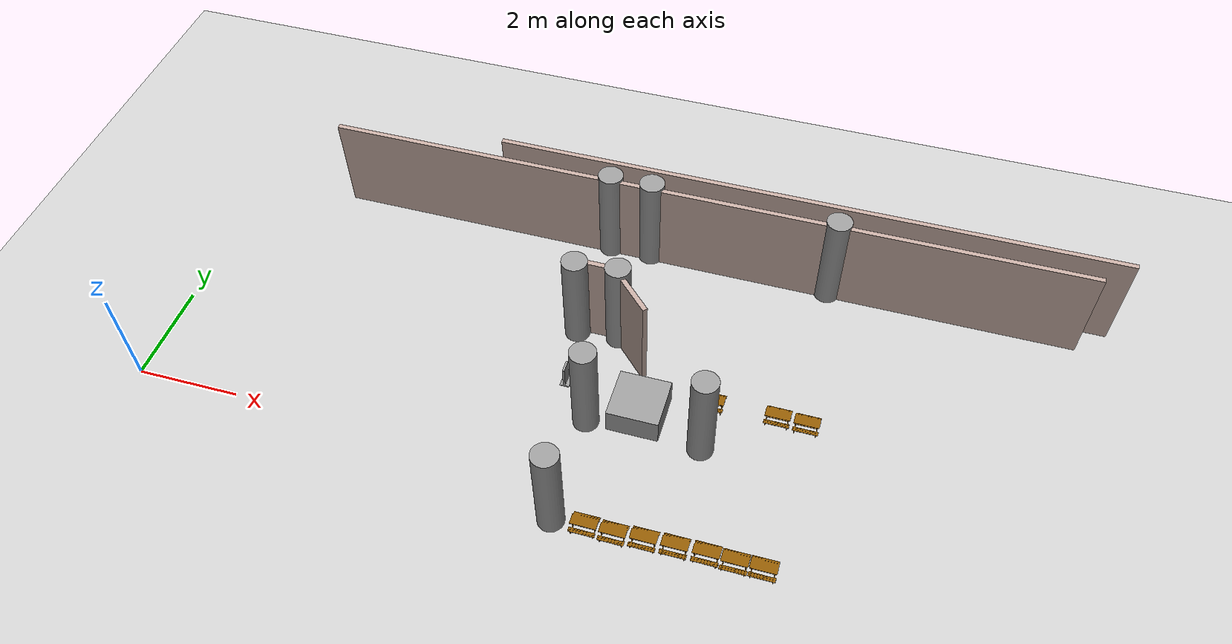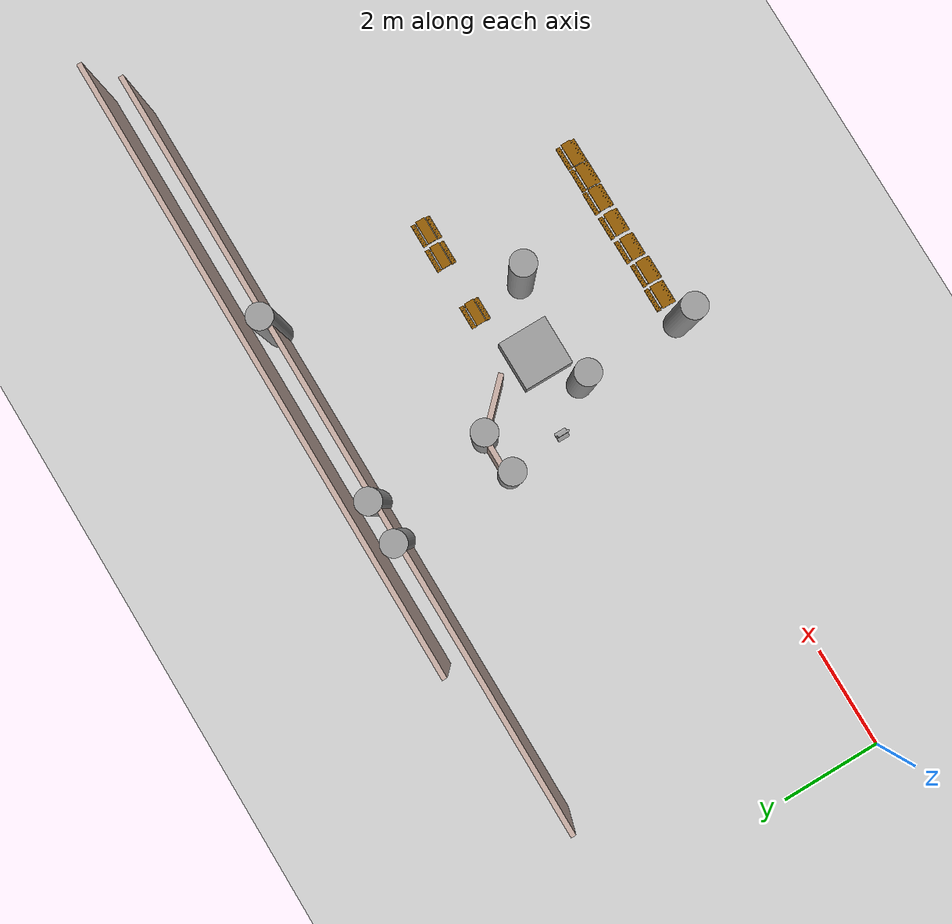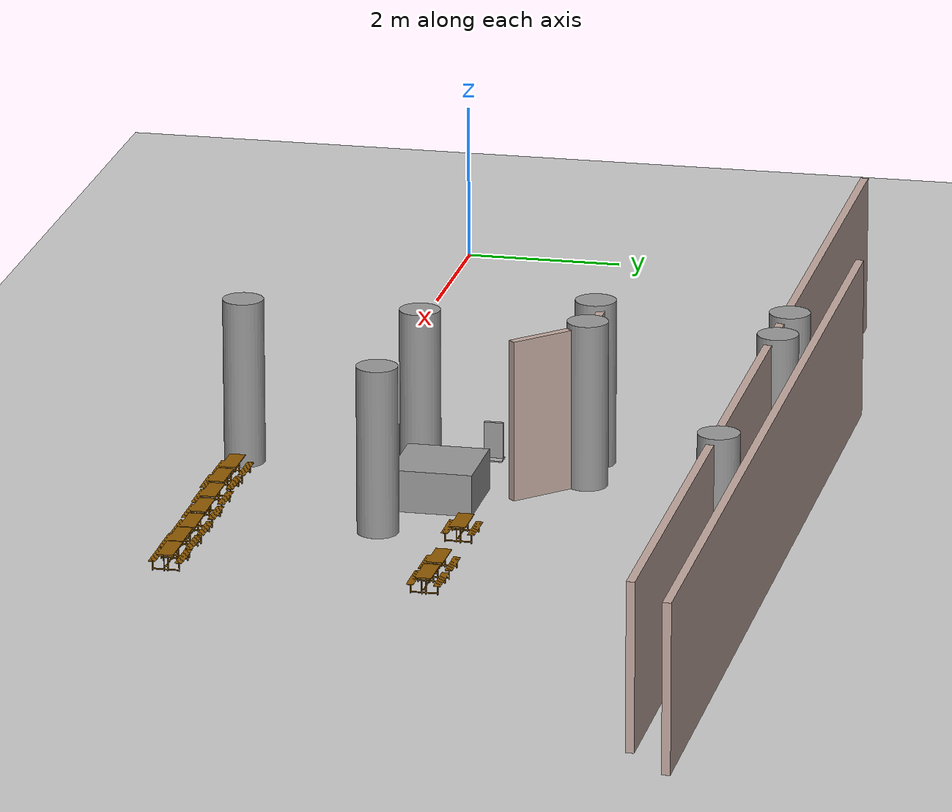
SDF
<sdf version="1.6">
 <world name="default">
  <model name="ground_plane">
   <static>1</static>
   <link name="link">
    <collision name="collision">
     <geometry><plane><normal>0 0 1</normal><size>100 100</size></plane></geometry>
     <surface>
      <contact><collide_bitmask>65535</collide_bitmask></contact>
      <friction><ode><mu>100</mu><mu2>50</mu2></ode></friction>
     </surface>
    </collision>
    <visual name="visual">
     <cast_shadows>0</cast_shadows>
     <geometry><plane><normal>0 0 1</normal><size>100 100</size></plane></geometry>
     <material>
      <script><uri>file://media/materials/scripts/gazebo.material</uri><name>Gazebo/Grey</name></script>
     </material>
    </visual>
   </link>
  </model>
  <model name="gedung_p">
   <pose>2.96636 -2.09069 0 0 -0 0</pose>
   <link name="Wall_145">
    <collision name="Wall_145_Collision">
     <geometry><box><size>15.25 0.1 2</size></box></geometry>
     <pose>0 0 1 0 -0 0</pose>
    </collision>
    <visual name="Wall_145_Visual">
     <pose>0 0 1 0 -0 0</pose>
     <geometry><box><size>15.25 0.1 2</size></box></geometry>
     <material>
      <script><uri>file://media/materials/scripts/gazebo.material</uri><name>Gazebo/Grey</name></script>
      <ambient>0.760784 0.662745 0.627451 1</ambient>
     </material>
     <meta><layer>0</layer></meta>
    </visual>
    <pose>6.63149 7.64081 0 0 -0 0</pose>
   </link>
   <link name="Wall_150">
    <collision name="Wall_150_Collision">
     <geometry><box><size>0.95 0.1 2</size></box></geometry>
     <pose>0 0 1 0 -0 0</pose>
    </collision>
    <visual name="Wall_150_Visual">
     <pose>0 0 1 0 -0 0</pose>
     <geometry><box><size>0.95 0.1 2</size></box></geometry>
     <material>
      <script><uri>file://media/materials/scripts/gazebo.material</uri><name>Gazebo/Grey</name></script>
      <ambient>0.760784 0.662745 0.627451 1</ambient>
     </material>
     <meta><layer>0</layer></meta>
    </visual>
    <pose>5.12349 5.44881 0 0 -0 0</pose>
   </link>
   <link name="Wall_151">
    <collision name="Wall_151_Collision">
     <geometry><box><size>1.2 0.1 2</size></box></geometry>
     <pose>0 0 1 0 -0 0</pose>
    </collision>
    <visual name="Wall_151_Visual">
     <pose>0 0 1 0 -0 0</pose>
     <geometry><box><size>1.2 0.1 2</size></box></geometry>
     <material>
      <script><uri>file://media/materials/scripts/gazebo.material</uri><name>Gazebo/Grey</name></script>
      <ambient>0.760784 0.662745 0.627451 1</ambient>
     </material>
     <meta><layer>0</layer></meta>
    </visual>
    <pose>5.93749 5.0598 0 0 -0 -0.785398</pose>
   </link>
   <link name="Wall_157">
    <collision name="Wall_157_Collision">
     <geometry><box><size>12.45 0.1 2</size></box></geometry>
     <pose>0 0 1 0 -0 0</pose>
    </collision>
    <visual name="Wall_157_Visual">
     <pose>0 0 1 0 -0 0</pose>
     <geometry><box><size>12.45 0.1 2</size></box></geometry>
     <material>
      <script><uri>file://media/materials/scripts/gazebo.material</uri><name>Gazebo/Grey</name></script>
      <ambient>0.760784 0.662745 0.627451 1</ambient>
     </material>
     <meta><layer>0</layer></meta>
    </visual>
    <pose>8.60349 8.1548 0 0 -0 0</pose>
   </link>
   <link name="Wall_252">
    <collision name="Wall_252_Collision">
     <geometry><box><size>0.305199 0.2 2</size></box></geometry>
     <pose>0 0 1 0 -0 0</pose>
    </collision>
    <visual name="Wall_252_Visual">
     <pose>0 0 1 0 -0 0</pose>
     <geometry><box><size>0.305199 0.2 2</size></box></geometry>
     <material>
      <script><uri>file://media/materials/scripts/gazebo.material</uri><name>Gazebo/Grey</name></script>
      <ambient>0.760784 0.662745 0.627451 1</ambient>
     </material>
     <meta><layer>0</layer></meta>
    </visual>
    <pose>5.58982 1.13562 0 0 -0 0</pose>
   </link>
   <link name="Wall_254">
    <collision name="Wall_254_Collision">
     <geometry><box><size>0.324693 0.2 2</size></box></geometry>
     <pose>0 0 1 0 -0 0</pose>
    </collision>
    <visual name="Wall_254_Visual">
     <pose>0 0 1 0 -0 0</pose>
     <geometry><box><size>0.324693 0.2 2</size></box></geometry>
     <material>
      <script><uri>file://media/materials/scripts/gazebo.material</uri><name>Gazebo/Grey</name></script>
      <ambient>0.760784 0.662745 0.627451 1</ambient>
     </material>
     <meta><layer>0</layer></meta>
    </visual>
    <pose>5.58982 3.28741 0 0 -0 0</pose>
   </link>
   <link name="Wall_256">
    <collision name="Wall_256_Collision">
     <geometry><box><size>0.343771 0.2 2</size></box></geometry>
     <pose>0 0 1 0 -0 0</pose>
    </collision>
    <visual name="Wall_256_Visual">
     <pose>0 0 1 0 -0 0</pose>
     <geometry><box><size>0.343771 0.2 2</size></box></geometry>
     <material>
      <script><uri>file://media/materials/scripts/gazebo.material</uri><name>Gazebo/Grey</name></script>
      <ambient>0.760784 0.662745 0.627451 1</ambient>
     </material>
     <meta><layer>0</layer></meta>
    </visual>
    <pose>7.7703 3.28263 0 0 -0 0.066568</pose>
   </link>
   <static>1</static>
  </model>
  <model name="tiang_besar_37">
   <link name="link_0">
    <inertial>
     <mass>1</mass>
     <inertia>
      <ixx>0.166667</ixx>
      <ixy>0</ixy>
      <ixz>0</ixz>
      <iyy>0.166667</iyy>
      <iyz>0</iyz>
      <izz>0.166667</izz>
     </inertia>
    </inertial>
    <pose>0.080543 -0.031124 0 0 -0 0</pose>
    <visual name="visual">
     <geometry>
      <mesh><uri>/home/thardi/Gazebo Objek/cylinder sedang.dae</uri><scale>1 1 1.15</scale></mesh>
     </geometry>
     <material>
      <lighting>1</lighting>
      <script><uri>file://media/materials/scripts/gazebo.material</uri><name>Gazebo/Grey</name></script>
      <shader type="vertex"><normal_map>__default__</normal_map></shader>
      <ambient>0.3 0.3 0.3 1</ambient>
      <diffuse>0.7 0.7 0.7 1</diffuse>
      <specular>0.01 0.01 0.01 1</specular>
      <emissive>0 0 0 1</emissive>
     </material>
    </visual>
    <collision name="collision">
     <geometry>
      <mesh><uri>/home/thardi/Gazebo Objek/cylinder sedang.dae</uri><scale>1 1 1.15</scale></mesh>
     </geometry>
     <surface>
      <friction>
       <ode><mu>1.15</mu><mu2>1</mu2><fdir1>0 0 0</fdir1><slip1>0</slip1><slip2>0</slip2></ode>
       <torsional>
        <coefficient>1</coefficient>
        <patch_radius>0</patch_radius>
        <surface_radius>0</surface_radius>
        <use_patch_radius>1</use_patch_radius>
        <ode><slip>0</slip></ode>
       </torsional>
      </friction>
      <bounce><restitution_coefficient>0</restitution_coefficient><threshold>1e+06</threshold></bounce>
      <contact>
       <collide_without_contact>0</collide_without_contact>
       <collide_without_contact_bitmask>1</collide_without_contact_bitmask>
       <collide_bitmask>1</collide_bitmask>
       <ode>
        <soft_cfm>0</soft_cfm>
        <soft_erp>0.2</soft_erp>
        <kp>1e+13</kp>
        <kd>1</kd>
        <max_vel>0.01</max_vel>
        <min_depth>0</min_depth>
       </ode>
       <bullet>
        <split_impulse>1</split_impulse>
        <split_impulse_penetration_threshold>-0.01</split_impulse_penetration_threshold>
        <soft_cfm>0</soft_cfm>
        <soft_erp>0.2</soft_erp>
        <kp>1e+13</kp>
        <kd>1</kd>
       </bullet>
      </contact>
     </surface>
    </collision>
   </link>
   <static>1</static>
   <pose>7.69154 3.28477 0 0 -0 0</pose>
  </model>
  <model name="tiang_besar_38">
   <link name="link_0">
    <inertial>
     <mass>1</mass>
     <inertia>
      <ixx>0.166667</ixx>
      <ixy>0</ixy>
      <ixz>0</ixz>
      <iyy>0.166667</iyy>
      <iyz>0</iyz>
      <izz>0.166667</izz>
     </inertia>
    </inertial>
    <pose>0.080543 -0.031124 0 0 -0 0</pose>
    <visual name="visual">
     <geometry>
      <mesh><uri>/home/thardi/Gazebo Objek/cylinder sedang.dae</uri><scale>1 1 1.15</scale></mesh>
     </geometry>
     <material>
      <lighting>1</lighting>
      <script><uri>file://media/materials/scripts/gazebo.material</uri><name>Gazebo/Grey</name></script>
      <shader type="vertex"><normal_map>__default__</normal_map></shader>
      <ambient>0.3 0.3 0.3 1</ambient>
      <diffuse>0.7 0.7 0.7 1</diffuse>
      <specular>0.01 0.01 0.01 1</specular>
      <emissive>0 0 0 1</emissive>
     </material>
    </visual>
    <collision name="collision">
     <geometry>
      <mesh><uri>/home/thardi/Gazebo Objek/cylinder sedang.dae</uri><scale>1 1 1.15</scale></mesh>
     </geometry>
     <surface>
      <friction>
       <ode><mu>1.15</mu><mu2>1</mu2><fdir1>0 0 0</fdir1><slip1>0</slip1><slip2>0</slip2></ode>
       <torsional>
        <coefficient>1</coefficient>
        <patch_radius>0</patch_radius>
        <surface_radius>0</surface_radius>
        <use_patch_radius>1</use_patch_radius>
        <ode><slip>0</slip></ode>
       </torsional>
      </friction>
      <bounce><restitution_coefficient>0</restitution_coefficient><threshold>1e+06</threshold></bounce>
      <contact>
       <collide_without_contact>0</collide_without_contact>
       <collide_without_contact_bitmask>1</collide_without_contact_bitmask>
       <collide_bitmask>1</collide_bitmask>
       <ode>
        <soft_cfm>0</soft_cfm>
        <soft_erp>0.2</soft_erp>
        <kp>1e+13</kp>
        <kd>1</kd>
        <max_vel>0.01</max_vel>
        <min_depth>0</min_depth>
       </ode>
       <bullet>
        <split_impulse>1</split_impulse>
        <split_impulse_penetration_threshold>-0.01</split_impulse_penetration_threshold>
        <soft_cfm>0</soft_cfm>
        <soft_erp>0.2</soft_erp>
        <kp>1e+13</kp>
        <kd>1</kd>
       </bullet>
      </contact>
     </surface>
    </collision>
   </link>
   <static>1</static>
   <pose>8.51353 3.3526 0 0 -0 0</pose>
  </model>
  <model name="tiang_besar_44">
   <link name="link_0">
    <inertial>
     <mass>1</mass>
     <inertia>
      <ixx>0.166667</ixx>
      <ixy>0</ixy>
      <ixz>0</ixz>
      <iyy>0.166667</iyy>
      <iyz>0</iyz>
      <izz>0.166667</izz>
     </inertia>
    </inertial>
    <pose>0.080543 -0.031124 0 0 -0 0</pose>
    <visual name="visual">
     <geometry>
      <mesh><uri>/home/thardi/Gazebo Objek/cylinder sedang.dae</uri><scale>1 1 1.15</scale></mesh>
     </geometry>
     <material>
      <lighting>1</lighting>
      <script><uri>file://media/materials/scripts/gazebo.material</uri><name>Gazebo/Grey</name></script>
      <shader type="vertex"><normal_map>__default__</normal_map></shader>
      <ambient>0.3 0.3 0.3 1</ambient>
      <diffuse>0.7 0.7 0.7 1</diffuse>
      <specular>0.01 0.01 0.01 1</specular>
      <emissive>0 0 0 1</emissive>
     </material>
    </visual>
    <collision name="collision">
     <geometry>
      <mesh><uri>/home/thardi/Gazebo Objek/cylinder sedang.dae</uri><scale>1 1 1.15</scale></mesh>
     </geometry>
     <surface>
      <friction>
       <ode><mu>1.15</mu><mu2>1</mu2><fdir1>0 0 0</fdir1><slip1>0</slip1><slip2>0</slip2></ode>
       <torsional>
        <coefficient>1</coefficient>
        <patch_radius>0</patch_radius>
        <surface_radius>0</surface_radius>
        <use_patch_radius>1</use_patch_radius>
        <ode><slip>0</slip></ode>
       </torsional>
      </friction>
      <bounce><restitution_coefficient>0</restitution_coefficient><threshold>1e+06</threshold></bounce>
      <contact>
       <collide_without_contact>0</collide_without_contact>
       <collide_without_contact_bitmask>1</collide_without_contact_bitmask>
       <collide_bitmask>1</collide_bitmask>
       <ode>
        <soft_cfm>0</soft_cfm>
        <soft_erp>0.2</soft_erp>
        <kp>1e+13</kp>
        <kd>1</kd>
        <max_vel>0.01</max_vel>
        <min_depth>0</min_depth>
       </ode>
       <bullet>
        <split_impulse>1</split_impulse>
        <split_impulse_penetration_threshold>-0.01</split_impulse_penetration_threshold>
        <soft_cfm>0</soft_cfm>
        <soft_erp>0.2</soft_erp>
        <kp>1e+13</kp>
        <kd>1</kd>
       </bullet>
      </contact>
     </surface>
    </collision>
   </link>
   <static>1</static>
   <pose>8.5241 -0.881705 0 0 -0 0</pose>
  </model>
  <model name="tiang_besar_58">
   <link name="link_0">
    <inertial>
     <mass>1</mass>
     <inertia>
      <ixx>0.166667</ixx>
      <ixy>0</ixy>
      <ixz>0</ixz>
      <iyy>0.166667</iyy>
      <iyz>0</iyz>
      <izz>0.166667</izz>
     </inertia>
    </inertial>
    <pose>0.080543 -0.031124 0 0 -0 0</pose>
    <visual name="visual">
     <geometry>
      <mesh><uri>/home/thardi/Gazebo Objek/cylinder sedang.dae</uri><scale>1 1 1.15</scale></mesh>
     </geometry>
     <material>
      <lighting>1</lighting>
      <script><uri>file://media/materials/scripts/gazebo.material</uri><name>Gazebo/Grey</name></script>
      <shader type="vertex"><normal_map>__default__</normal_map></shader>
      <ambient>0.3 0.3 0.3 1</ambient>
      <diffuse>0.7 0.7 0.7 1</diffuse>
      <specular>0.01 0.01 0.01 1</specular>
      <emissive>0 0 0 1</emissive>
     </material>
    </visual>
    <collision name="collision">
     <geometry>
      <mesh><uri>/home/thardi/Gazebo Objek/cylinder sedang.dae</uri><scale>1 1 1.15</scale></mesh>
     </geometry>
     <surface>
      <friction>
       <ode><mu>1.15</mu><mu2>1</mu2><fdir1>0 0 0</fdir1><slip1>0</slip1><slip2>0</slip2></ode>
       <torsional>
        <coefficient>1</coefficient>
        <patch_radius>0</patch_radius>
        <surface_radius>0</surface_radius>
        <use_patch_radius>1</use_patch_radius>
        <ode><slip>0</slip></ode>
       </torsional>
      </friction>
      <bounce><restitution_coefficient>0</restitution_coefficient><threshold>1e+06</threshold></bounce>
      <contact>
       <collide_without_contact>0</collide_without_contact>
       <collide_without_contact_bitmask>1</collide_without_contact_bitmask>
       <collide_bitmask>1</collide_bitmask>
       <ode>
        <soft_cfm>0</soft_cfm>
        <soft_erp>0.2</soft_erp>
        <kp>1e+13</kp>
        <kd>1</kd>
        <max_vel>0.01</max_vel>
        <min_depth>0</min_depth>
       </ode>
       <bullet>
        <split_impulse>1</split_impulse>
        <split_impulse_penetration_threshold>-0.01</split_impulse_penetration_threshold>
        <soft_cfm>0</soft_cfm>
        <soft_erp>0.2</soft_erp>
        <kp>1e+13</kp>
        <kd>1</kd>
       </bullet>
      </contact>
     </surface>
    </collision>
   </link>
   <static>1</static>
   <pose>8.48435 1.29135 0 0 -0 0</pose>
  </model>
  <model name="tiang_besar_59">
   <link name="link_0">
    <inertial>
     <mass>1</mass>
     <inertia>
      <ixx>0.166667</ixx>
      <ixy>0</ixy>
      <ixz>0</ixz>
      <iyy>0.166667</iyy>
      <iyz>0</iyz>
      <izz>0.166667</izz>
     </inertia>
    </inertial>
    <pose>0.080543 -0.031124 0 0 -0 0</pose>
    <visual name="visual">
     <geometry>
      <mesh><uri>/home/thardi/Gazebo Objek/cylinder sedang.dae</uri><scale>1 1 1.15</scale></mesh>
     </geometry>
     <material>
      <lighting>1</lighting>
      <script><uri>file://media/materials/scripts/gazebo.material</uri><name>Gazebo/Grey</name></script>
      <shader type="vertex"><normal_map>__default__</normal_map></shader>
      <ambient>0.3 0.3 0.3 1</ambient>
      <diffuse>0.7 0.7 0.7 1</diffuse>
      <specular>0.01 0.01 0.01 1</specular>
      <emissive>0 0 0 1</emissive>
     </material>
    </visual>
    <collision name="collision">
     <geometry>
      <mesh><uri>/home/thardi/Gazebo Objek/cylinder sedang.dae</uri><scale>1 1 1.15</scale></mesh>
     </geometry>
     <surface>
      <friction>
       <ode><mu>1.15</mu><mu2>1</mu2><fdir1>0 0 0</fdir1><slip1>0</slip1><slip2>0</slip2></ode>
       <torsional>
        <coefficient>1</coefficient>
        <patch_radius>0</patch_radius>
        <surface_radius>0</surface_radius>
        <use_patch_radius>1</use_patch_radius>
        <ode><slip>0</slip></ode>
       </torsional>
      </friction>
      <bounce><restitution_coefficient>0</restitution_coefficient><threshold>1e+06</threshold></bounce>
      <contact>
       <collide_without_contact>0</collide_without_contact>
       <collide_without_contact_bitmask>1</collide_without_contact_bitmask>
       <collide_bitmask>1</collide_bitmask>
       <ode>
        <soft_cfm>0</soft_cfm>
        <soft_erp>0.2</soft_erp>
        <kp>1e+13</kp>
        <kd>1</kd>
        <max_vel>0.01</max_vel>
        <min_depth>0</min_depth>
       </ode>
       <bullet>
        <split_impulse>1</split_impulse>
        <split_impulse_penetration_threshold>-0.01</split_impulse_penetration_threshold>
        <soft_cfm>0</soft_cfm>
        <soft_erp>0.2</soft_erp>
        <kp>1e+13</kp>
        <kd>1</kd>
       </bullet>
      </contact>
     </surface>
    </collision>
   </link>
   <static>1</static>
   <pose>10.6787 1.26678 0 0 -0 0</pose>
  </model>
  <model name="tiang_besar_68">
   <link name="link_0">
    <inertial>
     <mass>1</mass>
     <inertia>
      <ixx>0.166667</ixx>
      <ixy>0</ixy>
      <ixz>0</ixz>
      <iyy>0.166667</iyy>
      <iyz>0</iyz>
      <izz>0.166667</izz>
     </inertia>
    </inertial>
    <pose>0.080543 -0.031124 0 0 -0 0</pose>
    <visual name="visual">
     <geometry>
      <mesh><uri>/home/thardi/Gazebo Objek/cylinder sedang.dae</uri><scale>1 1 1.15</scale></mesh>
     </geometry>
     <material>
      <lighting>1</lighting>
      <script><uri>file://media/materials/scripts/gazebo.material</uri><name>Gazebo/Grey</name></script>
      <shader type="vertex"><normal_map>__default__</normal_map></shader>
      <ambient>0.3 0.3 0.3 1</ambient>
      <diffuse>0.7 0.7 0.7 1</diffuse>
      <specular>0.01 0.01 0.01 1</specular>
      <emissive>0 0 0 1</emissive>
     </material>
    </visual>
    <collision name="collision">
     <geometry>
      <mesh><uri>/home/thardi/Gazebo Objek/cylinder sedang.dae</uri><scale>1 1 1.15</scale></mesh>
     </geometry>
     <surface>
      <friction>
       <ode><mu>1.15</mu><mu2>1</mu2><fdir1>0 0 0</fdir1><slip1>0</slip1><slip2>0</slip2></ode>
       <torsional>
        <coefficient>1</coefficient>
        <patch_radius>0</patch_radius>
        <surface_radius>0</surface_radius>
        <use_patch_radius>1</use_patch_radius>
        <ode><slip>0</slip></ode>
       </torsional>
      </friction>
      <bounce><restitution_coefficient>0</restitution_coefficient><threshold>1e+06</threshold></bounce>
      <contact>
       <collide_without_contact>0</collide_without_contact>
       <collide_without_contact_bitmask>1</collide_without_contact_bitmask>
       <collide_bitmask>1</collide_bitmask>
       <ode>
        <soft_cfm>0</soft_cfm>
        <soft_erp>0.2</soft_erp>
        <kp>1e+13</kp>
        <kd>1</kd>
        <max_vel>0.01</max_vel>
        <min_depth>0</min_depth>
       </ode>
       <bullet>
        <split_impulse>1</split_impulse>
        <split_impulse_penetration_threshold>-0.01</split_impulse_penetration_threshold>
        <soft_cfm>0</soft_cfm>
        <soft_erp>0.2</soft_erp>
        <kp>1e+13</kp>
        <kd>1</kd>
       </bullet>
      </contact>
     </surface>
    </collision>
   </link>
   <static>1</static>
   <pose>7.68722 5.65576 0 0 -0 0</pose>
  </model>
  <model name="tiang_besar_69">
   <link name="link_0">
    <inertial>
     <mass>1</mass>
     <inertia>
      <ixx>0.166667</ixx>
      <ixy>0</ixy>
      <ixz>0</ixz>
      <iyy>0.166667</iyy>
      <iyz>0</iyz>
      <izz>0.166667</izz>
     </inertia>
    </inertial>
    <pose>0.080543 -0.031124 0 0 -0 0</pose>
    <visual name="visual">
     <geometry>
      <mesh><uri>/home/thardi/Gazebo Objek/cylinder sedang.dae</uri><scale>1 1 1.15</scale></mesh>
     </geometry>
     <material>
      <lighting>1</lighting>
      <script><uri>file://media/materials/scripts/gazebo.material</uri><name>Gazebo/Grey</name></script>
      <shader type="vertex"><normal_map>__default__</normal_map></shader>
      <ambient>0.3 0.3 0.3 1</ambient>
      <diffuse>0.7 0.7 0.7 1</diffuse>
      <specular>0.01 0.01 0.01 1</specular>
      <emissive>0 0 0 1</emissive>
     </material>
    </visual>
    <collision name="collision">
     <geometry>
      <mesh><uri>/home/thardi/Gazebo Objek/cylinder sedang.dae</uri><scale>1 1 1.15</scale></mesh>
     </geometry>
     <surface>
      <friction>
       <ode><mu>1.15</mu><mu2>1</mu2><fdir1>0 0 0</fdir1><slip1>0</slip1><slip2>0</slip2></ode>
       <torsional>
        <coefficient>1</coefficient>
        <patch_radius>0</patch_radius>
        <surface_radius>0</surface_radius>
        <use_patch_radius>1</use_patch_radius>
        <ode><slip>0</slip></ode>
       </torsional>
      </friction>
      <bounce><restitution_coefficient>0</restitution_coefficient><threshold>1e+06</threshold></bounce>
      <contact>
       <collide_without_contact>0</collide_without_contact>
       <collide_without_contact_bitmask>1</collide_without_contact_bitmask>
       <collide_bitmask>1</collide_bitmask>
       <ode>
        <soft_cfm>0</soft_cfm>
        <soft_erp>0.2</soft_erp>
        <kp>1e+13</kp>
        <kd>1</kd>
        <max_vel>0.01</max_vel>
        <min_depth>0</min_depth>
       </ode>
       <bullet>
        <split_impulse>1</split_impulse>
        <split_impulse_penetration_threshold>-0.01</split_impulse_penetration_threshold>
        <soft_cfm>0</soft_cfm>
        <soft_erp>0.2</soft_erp>
        <kp>1e+13</kp>
        <kd>1</kd>
       </bullet>
      </contact>
     </surface>
    </collision>
   </link>
   <static>1</static>
   <pose>8.52922 5.66176 0 0 -0 0</pose>
  </model>
  <model name="tiang_besar_70">
   <link name="link_0">
    <inertial>
     <mass>1</mass>
     <inertia>
      <ixx>0.166667</ixx>
      <ixy>0</ixy>
      <ixz>0</ixz>
      <iyy>0.166667</iyy>
      <iyz>0</iyz>
      <izz>0.166667</izz>
     </inertia>
    </inertial>
    <pose>0.080543 -0.031124 0 0 -0 0</pose>
    <visual name="visual">
     <geometry>
      <mesh><uri>/home/thardi/Gazebo Objek/cylinder sedang.dae</uri><scale>1 1 1.15</scale></mesh>
     </geometry>
     <material>
      <lighting>1</lighting>
      <script><uri>file://media/materials/scripts/gazebo.material</uri><name>Gazebo/Grey</name></script>
      <shader type="vertex"><normal_map>__default__</normal_map></shader>
      <ambient>0.3 0.3 0.3 1</ambient>
      <diffuse>0.7 0.7 0.7 1</diffuse>
      <specular>0.01 0.01 0.01 1</specular>
      <emissive>0 0 0 1</emissive>
     </material>
    </visual>
    <collision name="collision">
     <geometry>
      <mesh><uri>/home/thardi/Gazebo Objek/cylinder sedang.dae</uri><scale>1 1 1.15</scale></mesh>
     </geometry>
     <surface>
      <friction>
       <ode><mu>1.15</mu><mu2>1</mu2><fdir1>0 0 0</fdir1><slip1>0</slip1><slip2>0</slip2></ode>
       <torsional>
        <coefficient>1</coefficient>
        <patch_radius>0</patch_radius>
        <surface_radius>0</surface_radius>
        <use_patch_radius>1</use_patch_radius>
        <ode><slip>0</slip></ode>
       </torsional>
      </friction>
      <bounce><restitution_coefficient>0</restitution_coefficient><threshold>1e+06</threshold></bounce>
      <contact>
       <collide_without_contact>0</collide_without_contact>
       <collide_without_contact_bitmask>1</collide_without_contact_bitmask>
       <collide_bitmask>1</collide_bitmask>
       <ode>
        <soft_cfm>0</soft_cfm>
        <soft_erp>0.2</soft_erp>
        <kp>1e+13</kp>
        <kd>1</kd>
        <max_vel>0.01</max_vel>
        <min_depth>0</min_depth>
       </ode>
       <bullet>
        <split_impulse>1</split_impulse>
        <split_impulse_penetration_threshold>-0.01</split_impulse_penetration_threshold>
        <soft_cfm>0</soft_cfm>
        <soft_erp>0.2</soft_erp>
        <kp>1e+13</kp>
        <kd>1</kd>
       </bullet>
      </contact>
     </surface>
    </collision>
   </link>
   <static>1</static>
   <pose>12.2287 5.63932 0 0 -0 0</pose>
  </model>
  <model name="kursi_piknik_10">
   <link name="link_2">
    <inertial>
     <mass>1</mass>
     <inertia>
      <ixx>0.166667</ixx>
      <ixy>0</ixy>
      <ixz>0</ixz>
      <iyy>0.166667</iyy>
      <iyz>0</iyz>
      <izz>0.166667</izz>
     </inertia>
    </inertial>
    <visual name="visual">
     <geometry>
      <mesh><uri>/home/thardi/Gazebo Objek/kursi piknik.dae</uri><scale>0.2 0.2 0.2</scale></mesh>
     </geometry>
     <material>
      <lighting>1</lighting>
      <script><uri>file://media/materials/scripts/gazebo.material</uri><name>Gazebo/Grey</name></script>
      <shader type="vertex"><normal_map>__default__</normal_map></shader>
      <ambient>0.561 0.349 0.008 1</ambient>
      <diffuse>0.561 0.349 0.008 1</diffuse>
      <specular>0.561 0.349 0.008 1</specular>
      <emissive>0.561 0.349 0.008 1</emissive>
     </material>
    </visual>
    <collision name="collision">
     <geometry>
      <mesh><uri>/home/thardi/Gazebo Objek/kursi piknik.dae</uri><scale>0.2 0.2 0.2</scale></mesh>
     </geometry>
     <surface>
      <friction>
       <ode><mu>1</mu><mu2>1</mu2><fdir1>0 0 0</fdir1><slip1>0</slip1><slip2>0</slip2></ode>
       <torsional>
        <coefficient>1</coefficient>
        <patch_radius>0</patch_radius>
        <surface_radius>0</surface_radius>
        <use_patch_radius>1</use_patch_radius>
        <ode><slip>0</slip></ode>
       </torsional>
      </friction>
      <bounce><restitution_coefficient>0</restitution_coefficient><threshold>1e+06</threshold></bounce>
      <contact>
       <collide_without_contact>0</collide_without_contact>
       <collide_without_contact_bitmask>1</collide_without_contact_bitmask>
       <collide_bitmask>1</collide_bitmask>
       <ode>
        <soft_cfm>0</soft_cfm>
        <soft_erp>0.2</soft_erp>
        <kp>1e+13</kp>
        <kd>1</kd>
        <max_vel>0.01</max_vel>
        <min_depth>0</min_depth>
       </ode>
       <bullet>
        <split_impulse>1</split_impulse>
        <split_impulse_penetration_threshold>-0.01</split_impulse_penetration_threshold>
        <soft_cfm>0</soft_cfm>
        <soft_erp>0.2</soft_erp>
        <kp>1e+13</kp>
        <kd>1</kd>
       </bullet>
      </contact>
     </surface>
    </collision>
   </link>
   <static>1</static>
   <pose>9.21536 -0.908258 0 0 -0 0</pose>
  </model>
  <model name="kursi_piknik_11">
   <link name="link_2">
    <inertial>
     <mass>1</mass>
     <inertia>
      <ixx>0.166667</ixx>
      <ixy>0</ixy>
      <ixz>0</ixz>
      <iyy>0.166667</iyy>
      <iyz>0</iyz>
      <izz>0.166667</izz>
     </inertia>
    </inertial>
    <visual name="visual">
     <geometry>
      <mesh><uri>/home/thardi/Gazebo Objek/kursi piknik.dae</uri><scale>0.2 0.2 0.2</scale></mesh>
     </geometry>
     <material>
      <lighting>1</lighting>
      <script><uri>file://media/materials/scripts/gazebo.material</uri><name>Gazebo/Grey</name></script>
      <shader type="vertex"><normal_map>__default__</normal_map></shader>
      <ambient>0.561 0.349 0.008 1</ambient>
      <diffuse>0.561 0.349 0.008 1</diffuse>
      <specular>0.561 0.349 0.008 1</specular>
      <emissive>0.561 0.349 0.008 1</emissive>
     </material>
    </visual>
    <collision name="collision">
     <geometry>
      <mesh><uri>/home/thardi/Gazebo Objek/kursi piknik.dae</uri><scale>0.2 0.2 0.2</scale></mesh>
     </geometry>
     <surface>
      <friction>
       <ode><mu>1</mu><mu2>1</mu2><fdir1>0 0 0</fdir1><slip1>0</slip1><slip2>0</slip2></ode>
       <torsional>
        <coefficient>1</coefficient>
        <patch_radius>0</patch_radius>
        <surface_radius>0</surface_radius>
        <use_patch_radius>1</use_patch_radius>
        <ode><slip>0</slip></ode>
       </torsional>
      </friction>
      <bounce><restitution_coefficient>0</restitution_coefficient><threshold>1e+06</threshold></bounce>
      <contact>
       <collide_without_contact>0</collide_without_contact>
       <collide_without_contact_bitmask>1</collide_without_contact_bitmask>
       <collide_bitmask>1</collide_bitmask>
       <ode>
        <soft_cfm>0</soft_cfm>
        <soft_erp>0.2</soft_erp>
        <kp>1e+13</kp>
        <kd>1</kd>
        <max_vel>0.01</max_vel>
        <min_depth>0</min_depth>
       </ode>
       <bullet>
        <split_impulse>1</split_impulse>
        <split_impulse_penetration_threshold>-0.01</split_impulse_penetration_threshold>
        <soft_cfm>0</soft_cfm>
        <soft_erp>0.2</soft_erp>
        <kp>1e+13</kp>
        <kd>1</kd>
       </bullet>
      </contact>
     </surface>
    </collision>
   </link>
   <static>1</static>
   <pose>9.7468 -0.925362 0 0 -0 0</pose>
  </model>
  <model name="kursi_piknik_12">
   <link name="link_2">
    <inertial>
     <mass>1</mass>
     <inertia>
      <ixx>0.166667</ixx>
      <ixy>0</ixy>
      <ixz>0</ixz>
      <iyy>0.166667</iyy>
      <iyz>0</iyz>
      <izz>0.166667</izz>
     </inertia>
    </inertial>
    <visual name="visual">
     <geometry>
      <mesh><uri>/home/thardi/Gazebo Objek/kursi piknik.dae</uri><scale>0.2 0.2 0.2</scale></mesh>
     </geometry>
     <material>
      <lighting>1</lighting>
      <script><uri>file://media/materials/scripts/gazebo.material</uri><name>Gazebo/Grey</name></script>
      <shader type="vertex"><normal_map>__default__</normal_map></shader>
      <ambient>0.561 0.349 0.008 1</ambient>
      <diffuse>0.561 0.349 0.008 1</diffuse>
      <specular>0.561 0.349 0.008 1</specular>
      <emissive>0.561 0.349 0.008 1</emissive>
     </material>
    </visual>
    <collision name="collision">
     <geometry>
      <mesh><uri>/home/thardi/Gazebo Objek/kursi piknik.dae</uri><scale>0.2 0.2 0.2</scale></mesh>
     </geometry>
     <surface>
      <friction>
       <ode><mu>1</mu><mu2>1</mu2><fdir1>0 0 0</fdir1><slip1>0</slip1><slip2>0</slip2></ode>
       <torsional>
        <coefficient>1</coefficient>
        <patch_radius>0</patch_radius>
        <surface_radius>0</surface_radius>
        <use_patch_radius>1</use_patch_radius>
        <ode><slip>0</slip></ode>
       </torsional>
      </friction>
      <bounce><restitution_coefficient>0</restitution_coefficient><threshold>1e+06</threshold></bounce>
      <contact>
       <collide_without_contact>0</collide_without_contact>
       <collide_without_contact_bitmask>1</collide_without_contact_bitmask>
       <collide_bitmask>1</collide_bitmask>
       <ode>
        <soft_cfm>0</soft_cfm>
        <soft_erp>0.2</soft_erp>
        <kp>1e+13</kp>
        <kd>1</kd>
        <max_vel>0.01</max_vel>
        <min_depth>0</min_depth>
       </ode>
       <bullet>
        <split_impulse>1</split_impulse>
        <split_impulse_penetration_threshold>-0.01</split_impulse_penetration_threshold>
        <soft_cfm>0</soft_cfm>
        <soft_erp>0.2</soft_erp>
        <kp>1e+13</kp>
        <kd>1</kd>
       </bullet>
      </contact>
     </surface>
    </collision>
   </link>
   <static>1</static>
   <pose>10.2882 -0.89489 0 0 -0 0</pose>
  </model>
  <model name="kursi_piknik_13">
   <link name="link_2">
    <inertial>
     <mass>1</mass>
     <inertia>
      <ixx>0.166667</ixx>
      <ixy>0</ixy>
      <ixz>0</ixz>
      <iyy>0.166667</iyy>
      <iyz>0</iyz>
      <izz>0.166667</izz>
     </inertia>
    </inertial>
    <visual name="visual">
     <geometry>
      <mesh><uri>/home/thardi/Gazebo Objek/kursi piknik.dae</uri><scale>0.2 0.2 0.2</scale></mesh>
     </geometry>
     <material>
      <lighting>1</lighting>
      <script><uri>file://media/materials/scripts/gazebo.material</uri><name>Gazebo/Grey</name></script>
      <shader type="vertex"><normal_map>__default__</normal_map></shader>
      <ambient>0.561 0.349 0.008 1</ambient>
      <diffuse>0.561 0.349 0.008 1</diffuse>
      <specular>0.561 0.349 0.008 1</specular>
      <emissive>0.561 0.349 0.008 1</emissive>
     </material>
    </visual>
    <collision name="collision">
     <geometry>
      <mesh><uri>/home/thardi/Gazebo Objek/kursi piknik.dae</uri><scale>0.2 0.2 0.2</scale></mesh>
     </geometry>
     <surface>
      <friction>
       <ode><mu>1</mu><mu2>1</mu2><fdir1>0 0 0</fdir1><slip1>0</slip1><slip2>0</slip2></ode>
       <torsional>
        <coefficient>1</coefficient>
        <patch_radius>0</patch_radius>
        <surface_radius>0</surface_radius>
        <use_patch_radius>1</use_patch_radius>
        <ode><slip>0</slip></ode>
       </torsional>
      </friction>
      <bounce><restitution_coefficient>0</restitution_coefficient><threshold>1e+06</threshold></bounce>
      <contact>
       <collide_without_contact>0</collide_without_contact>
       <collide_without_contact_bitmask>1</collide_without_contact_bitmask>
       <collide_bitmask>1</collide_bitmask>
       <ode>
        <soft_cfm>0</soft_cfm>
        <soft_erp>0.2</soft_erp>
        <kp>1e+13</kp>
        <kd>1</kd>
        <max_vel>0.01</max_vel>
        <min_depth>0</min_depth>
       </ode>
       <bullet>
        <split_impulse>1</split_impulse>
        <split_impulse_penetration_threshold>-0.01</split_impulse_penetration_threshold>
        <soft_cfm>0</soft_cfm>
        <soft_erp>0.2</soft_erp>
        <kp>1e+13</kp>
        <kd>1</kd>
       </bullet>
      </contact>
     </surface>
    </collision>
   </link>
   <static>1</static>
   <pose>10.8367 -0.878332 0 0 -0 0</pose>
  </model>
  <model name="kursi_piknik_14">
   <link name="link_2">
    <inertial>
     <mass>1</mass>
     <inertia>
      <ixx>0.166667</ixx>
      <ixy>0</ixy>
      <ixz>0</ixz>
      <iyy>0.166667</iyy>
      <iyz>0</iyz>
      <izz>0.166667</izz>
     </inertia>
    </inertial>
    <visual name="visual">
     <geometry>
      <mesh><uri>/home/thardi/Gazebo Objek/kursi piknik.dae</uri><scale>0.2 0.2 0.2</scale></mesh>
     </geometry>
     <material>
      <lighting>1</lighting>
      <script><uri>file://media/materials/scripts/gazebo.material</uri><name>Gazebo/Grey</name></script>
      <shader type="vertex"><normal_map>__default__</normal_map></shader>
      <ambient>0.561 0.349 0.008 1</ambient>
      <diffuse>0.561 0.349 0.008 1</diffuse>
      <specular>0.561 0.349 0.008 1</specular>
      <emissive>0.561 0.349 0.008 1</emissive>
     </material>
    </visual>
    <collision name="collision">
     <geometry>
      <mesh><uri>/home/thardi/Gazebo Objek/kursi piknik.dae</uri><scale>0.2 0.2 0.2</scale></mesh>
     </geometry>
     <surface>
      <friction>
       <ode><mu>1</mu><mu2>1</mu2><fdir1>0 0 0</fdir1><slip1>0</slip1><slip2>0</slip2></ode>
       <torsional>
        <coefficient>1</coefficient>
        <patch_radius>0</patch_radius>
        <surface_radius>0</surface_radius>
        <use_patch_radius>1</use_patch_radius>
        <ode><slip>0</slip></ode>
       </torsional>
      </friction>
      <bounce><restitution_coefficient>0</restitution_coefficient><threshold>1e+06</threshold></bounce>
      <contact>
       <collide_without_contact>0</collide_without_contact>
       <collide_without_contact_bitmask>1</collide_without_contact_bitmask>
       <collide_bitmask>1</collide_bitmask>
       <ode>
        <soft_cfm>0</soft_cfm>
        <soft_erp>0.2</soft_erp>
        <kp>1e+13</kp>
        <kd>1</kd>
        <max_vel>0.01</max_vel>
        <min_depth>0</min_depth>
       </ode>
       <bullet>
        <split_impulse>1</split_impulse>
        <split_impulse_penetration_threshold>-0.01</split_impulse_penetration_threshold>
        <soft_cfm>0</soft_cfm>
        <soft_erp>0.2</soft_erp>
        <kp>1e+13</kp>
        <kd>1</kd>
       </bullet>
      </contact>
     </surface>
    </collision>
   </link>
   <static>1</static>
   <pose>11.3925 -0.86889 0 0 -0 0</pose>
  </model>
  <model name="kursi_piknik_15">
   <link name="link_2">
    <inertial>
     <mass>1</mass>
     <inertia>
      <ixx>0.166667</ixx>
      <ixy>0</ixy>
      <ixz>0</ixz>
      <iyy>0.166667</iyy>
      <iyz>0</iyz>
      <izz>0.166667</izz>
     </inertia>
    </inertial>
    <visual name="visual">
     <geometry>
      <mesh><uri>/home/thardi/Gazebo Objek/kursi piknik.dae</uri><scale>0.2 0.2 0.2</scale></mesh>
     </geometry>
     <material>
      <lighting>1</lighting>
      <script><uri>file://media/materials/scripts/gazebo.material</uri><name>Gazebo/Grey</name></script>
      <shader type="vertex"><normal_map>__default__</normal_map></shader>
      <ambient>0.561 0.349 0.008 1</ambient>
      <diffuse>0.561 0.349 0.008 1</diffuse>
      <specular>0.561 0.349 0.008 1</specular>
      <emissive>0.561 0.349 0.008 1</emissive>
     </material>
    </visual>
    <collision name="collision">
     <geometry>
      <mesh><uri>/home/thardi/Gazebo Objek/kursi piknik.dae</uri><scale>0.2 0.2 0.2</scale></mesh>
     </geometry>
     <surface>
      <friction>
       <ode><mu>1</mu><mu2>1</mu2><fdir1>0 0 0</fdir1><slip1>0</slip1><slip2>0</slip2></ode>
       <torsional>
        <coefficient>1</coefficient>
        <patch_radius>0</patch_radius>
        <surface_radius>0</surface_radius>
        <use_patch_radius>1</use_patch_radius>
        <ode><slip>0</slip></ode>
       </torsional>
      </friction>
      <bounce><restitution_coefficient>0</restitution_coefficient><threshold>1e+06</threshold></bounce>
      <contact>
       <collide_without_contact>0</collide_without_contact>
       <collide_without_contact_bitmask>1</collide_without_contact_bitmask>
       <collide_bitmask>1</collide_bitmask>
       <ode>
        <soft_cfm>0</soft_cfm>
        <soft_erp>0.2</soft_erp>
        <kp>1e+13</kp>
        <kd>1</kd>
        <max_vel>0.01</max_vel>
        <min_depth>0</min_depth>
       </ode>
       <bullet>
        <split_impulse>1</split_impulse>
        <split_impulse_penetration_threshold>-0.01</split_impulse_penetration_threshold>
        <soft_cfm>0</soft_cfm>
        <soft_erp>0.2</soft_erp>
        <kp>1e+13</kp>
        <kd>1</kd>
       </bullet>
      </contact>
     </surface>
    </collision>
   </link>
   <static>1</static>
   <pose>11.894 -0.884647 0 0 -0 0</pose>
  </model>
  <model name="kursi_piknik_16">
   <link name="link_2">
    <inertial>
     <mass>1</mass>
     <inertia>
      <ixx>0.166667</ixx>
      <ixy>0</ixy>
      <ixz>0</ixz>
      <iyy>0.166667</iyy>
      <iyz>0</iyz>
      <izz>0.166667</izz>
     </inertia>
    </inertial>
    <visual name="visual">
     <geometry>
      <mesh><uri>/home/thardi/Gazebo Objek/kursi piknik.dae</uri><scale>0.2 0.2 0.2</scale></mesh>
     </geometry>
     <material>
      <lighting>1</lighting>
      <script><uri>file://media/materials/scripts/gazebo.material</uri><name>Gazebo/Grey</name></script>
      <shader type="vertex"><normal_map>__default__</normal_map></shader>
      <ambient>0.561 0.349 0.008 1</ambient>
      <diffuse>0.561 0.349 0.008 1</diffuse>
      <specular>0.561 0.349 0.008 1</specular>
      <emissive>0.561 0.349 0.008 1</emissive>
     </material>
    </visual>
    <collision name="collision">
     <geometry>
      <mesh><uri>/home/thardi/Gazebo Objek/kursi piknik.dae</uri><scale>0.2 0.2 0.2</scale></mesh>
     </geometry>
     <surface>
      <friction>
       <ode><mu>1</mu><mu2>1</mu2><fdir1>0 0 0</fdir1><slip1>0</slip1><slip2>0</slip2></ode>
       <torsional>
        <coefficient>1</coefficient>
        <patch_radius>0</patch_radius>
        <surface_radius>0</surface_radius>
        <use_patch_radius>1</use_patch_radius>
        <ode><slip>0</slip></ode>
       </torsional>
      </friction>
      <bounce><restitution_coefficient>0</restitution_coefficient><threshold>1e+06</threshold></bounce>
      <contact>
       <collide_without_contact>0</collide_without_contact>
       <collide_without_contact_bitmask>1</collide_without_contact_bitmask>
       <collide_bitmask>1</collide_bitmask>
       <ode>
        <soft_cfm>0</soft_cfm>
        <soft_erp>0.2</soft_erp>
        <kp>1e+13</kp>
        <kd>1</kd>
        <max_vel>0.01</max_vel>
        <min_depth>0</min_depth>
       </ode>
       <bullet>
        <split_impulse>1</split_impulse>
        <split_impulse_penetration_threshold>-0.01</split_impulse_penetration_threshold>
        <soft_cfm>0</soft_cfm>
        <soft_erp>0.2</soft_erp>
        <kp>1e+13</kp>
        <kd>1</kd>
       </bullet>
      </contact>
     </surface>
    </collision>
   </link>
   <static>1</static>
   <pose>12.3921 -0.879411 0 0 -0 0</pose>
  </model>
  <model name="blok_6">
   <link name="link_0">
    <inertial>
     <mass>1</mass>
     <inertia>
      <ixx>0.166667</ixx>
      <ixy>0</ixy>
      <ixz>0</ixz>
      <iyy>0.166667</iyy>
      <iyz>0</iyz>
      <izz>0.166667</izz>
     </inertia>
    </inertial>
    <visual name="visual">
     <geometry><box><size>1 1 1</size></box></geometry>
     <material>
      <lighting>1</lighting>
      <script><uri>file://media/materials/scripts/gazebo.material</uri><name>Gazebo/Grey</name></script>
      <shader type="vertex"><normal_map>__default__</normal_map></shader>
      <ambient>0.3 0.3 0.3 1</ambient>
      <diffuse>0.7 0.7 0.7 1</diffuse>
      <specular>0.01 0.01 0.01 1</specular>
      <emissive>0 0 0 1</emissive>
     </material>
    </visual>
    <collision name="collision">
     <geometry><box><size>1 1 1</size></box></geometry>
     <surface>
      <friction>
       <ode><mu>1</mu><mu2>1</mu2><fdir1>0 0 0</fdir1><slip1>0</slip1><slip2>0</slip2></ode>
       <torsional>
        <coefficient>1</coefficient>
        <patch_radius>0</patch_radius>
        <surface_radius>0</surface_radius>
        <use_patch_radius>1</use_patch_radius>
        <ode><slip>0</slip></ode>
       </torsional>
      </friction>
      <bounce><restitution_coefficient>0</restitution_coefficient><threshold>1e+06</threshold></bounce>
      <contact>
       <collide_without_contact>0</collide_without_contact>
       <collide_without_contact_bitmask>1</collide_without_contact_bitmask>
       <collide_bitmask>1</collide_bitmask>
       <ode>
        <soft_cfm>0</soft_cfm>
        <soft_erp>0.2</soft_erp>
        <kp>1e+13</kp>
        <kd>1</kd>
        <max_vel>0.01</max_vel>
        <min_depth>0</min_depth>
       </ode>
       <bullet>
        <split_impulse>1</split_impulse>
        <split_impulse_penetration_threshold>-0.01</split_impulse_penetration_threshold>
        <soft_cfm>0</soft_cfm>
        <soft_erp>0.2</soft_erp>
        <kp>1e+13</kp>
        <kd>1</kd>
       </bullet>
      </contact>
     </surface>
    </collision>
   </link>
   <static>1</static>
   <pose>9.46667 1.69907 0 0 -0 0</pose>
  </model>
  <model name="kursi_piknik_22">
   <link name="link_2">
    <inertial>
     <mass>1</mass>
     <inertia>
      <ixx>0.166667</ixx>
      <ixy>0</ixy>
      <ixz>0</ixz>
      <iyy>0.166667</iyy>
      <iyz>0</iyz>
      <izz>0.166667</izz>
     </inertia>
    </inertial>
    <visual name="visual">
     <geometry>
      <mesh><uri>/home/thardi/Gazebo Objek/kursi piknik.dae</uri><scale>0.2 0.2 0.2</scale></mesh>
     </geometry>
     <material>
      <lighting>1</lighting>
      <script><uri>file://media/materials/scripts/gazebo.material</uri><name>Gazebo/Grey</name></script>
      <shader type="vertex"><normal_map>__default__</normal_map></shader>
      <ambient>0.561 0.349 0.008 1</ambient>
      <diffuse>0.561 0.349 0.008 1</diffuse>
      <specular>0.561 0.349 0.008 1</specular>
      <emissive>0.561 0.349 0.008 1</emissive>
     </material>
    </visual>
    <collision name="collision">
     <geometry>
      <mesh><uri>/home/thardi/Gazebo Objek/kursi piknik.dae</uri><scale>0.2 0.2 0.2</scale></mesh>
     </geometry>
     <surface>
      <friction>
       <ode><mu>1</mu><mu2>1</mu2><fdir1>0 0 0</fdir1><slip1>0</slip1><slip2>0</slip2></ode>
       <torsional>
        <coefficient>1</coefficient>
        <patch_radius>0</patch_radius>
        <surface_radius>0</surface_radius>
        <use_patch_radius>1</use_patch_radius>
        <ode><slip>0</slip></ode>
       </torsional>
      </friction>
      <bounce><restitution_coefficient>0</restitution_coefficient><threshold>1e+06</threshold></bounce>
      <contact>
       <collide_without_contact>0</collide_without_contact>
       <collide_without_contact_bitmask>1</collide_without_contact_bitmask>
       <collide_bitmask>1</collide_bitmask>
       <ode>
        <soft_cfm>0</soft_cfm>
        <soft_erp>0.2</soft_erp>
        <kp>1e+13</kp>
        <kd>1</kd>
        <max_vel>0.01</max_vel>
        <min_depth>0</min_depth>
       </ode>
       <bullet>
        <split_impulse>1</split_impulse>
        <split_impulse_penetration_threshold>-0.01</split_impulse_penetration_threshold>
        <soft_cfm>0</soft_cfm>
        <soft_erp>0.2</soft_erp>
        <kp>1e+13</kp>
        <kd>1</kd>
       </bullet>
      </contact>
     </surface>
    </collision>
   </link>
   <static>1</static>
   <pose>10.7349 2.24793 0 0 -0 0</pose>
  </model>
  <model name="kursi_piknik_23">
   <link name="link_2">
    <inertial>
     <mass>1</mass>
     <inertia>
      <ixx>0.166667</ixx>
      <ixy>0</ixy>
      <ixz>0</ixz>
      <iyy>0.166667</iyy>
      <iyz>0</iyz>
      <izz>0.166667</izz>
     </inertia>
    </inertial>
    <visual name="visual">
     <geometry>
      <mesh><uri>/home/thardi/Gazebo Objek/kursi piknik.dae</uri><scale>0.2 0.2 0.2</scale></mesh>
     </geometry>
     <material>
      <lighting>1</lighting>
      <script><uri>file://media/materials/scripts/gazebo.material</uri><name>Gazebo/Grey</name></script>
      <shader type="vertex"><normal_map>__default__</normal_map></shader>
      <ambient>0.561 0.349 0.008 1</ambient>
      <diffuse>0.561 0.349 0.008 1</diffuse>
      <specular>0.561 0.349 0.008 1</specular>
      <emissive>0.561 0.349 0.008 1</emissive>
     </material>
    </visual>
    <collision name="collision">
     <geometry>
      <mesh><uri>/home/thardi/Gazebo Objek/kursi piknik.dae</uri><scale>0.2 0.2 0.2</scale></mesh>
     </geometry>
     <surface>
      <friction>
       <ode><mu>1</mu><mu2>1</mu2><fdir1>0 0 0</fdir1><slip1>0</slip1><slip2>0</slip2></ode>
       <torsional>
        <coefficient>1</coefficient>
        <patch_radius>0</patch_radius>
        <surface_radius>0</surface_radius>
        <use_patch_radius>1</use_patch_radius>
        <ode><slip>0</slip></ode>
       </torsional>
      </friction>
      <bounce><restitution_coefficient>0</restitution_coefficient><threshold>1e+06</threshold></bounce>
      <contact>
       <collide_without_contact>0</collide_without_contact>
       <collide_without_contact_bitmask>1</collide_without_contact_bitmask>
       <collide_bitmask>1</collide_bitmask>
       <ode>
        <soft_cfm>0</soft_cfm>
        <soft_erp>0.2</soft_erp>
        <kp>1e+13</kp>
        <kd>1</kd>
        <max_vel>0.01</max_vel>
        <min_depth>0</min_depth>
       </ode>
       <bullet>
        <split_impulse>1</split_impulse>
        <split_impulse_penetration_threshold>-0.01</split_impulse_penetration_threshold>
        <soft_cfm>0</soft_cfm>
        <soft_erp>0.2</soft_erp>
        <kp>1e+13</kp>
        <kd>1</kd>
       </bullet>
      </contact>
     </surface>
    </collision>
   </link>
   <static>1</static>
   <pose>11.9905 2.25274 0 0 -0 0</pose>
  </model>
  <model name="kursi_piknik_24">
   <link name="link_2">
    <inertial>
     <mass>1</mass>
     <inertia>
      <ixx>0.166667</ixx>
      <ixy>0</ixy>
      <ixz>0</ixz>
      <iyy>0.166667</iyy>
      <iyz>0</iyz>
      <izz>0.166667</izz>
     </inertia>
    </inertial>
    <visual name="visual">
     <geometry>
      <mesh><uri>/home/thardi/Gazebo Objek/kursi piknik.dae</uri><scale>0.2 0.2 0.2</scale></mesh>
     </geometry>
     <material>
      <lighting>1</lighting>
      <script><uri>file://media/materials/scripts/gazebo.material</uri><name>Gazebo/Grey</name></script>
      <shader type="vertex"><normal_map>__default__</normal_map></shader>
      <ambient>0.561 0.349 0.008 1</ambient>
      <diffuse>0.561 0.349 0.008 1</diffuse>
      <specular>0.561 0.349 0.008 1</specular>
      <emissive>0.561 0.349 0.008 1</emissive>
     </material>
    </visual>
    <collision name="collision">
     <geometry>
      <mesh><uri>/home/thardi/Gazebo Objek/kursi piknik.dae</uri><scale>0.2 0.2 0.2</scale></mesh>
     </geometry>
     <surface>
      <friction>
       <ode><mu>1</mu><mu2>1</mu2><fdir1>0 0 0</fdir1><slip1>0</slip1><slip2>0</slip2></ode>
       <torsional>
        <coefficient>1</coefficient>
        <patch_radius>0</patch_radius>
        <surface_radius>0</surface_radius>
        <use_patch_radius>1</use_patch_radius>
        <ode><slip>0</slip></ode>
       </torsional>
      </friction>
      <bounce><restitution_coefficient>0</restitution_coefficient><threshold>1e+06</threshold></bounce>
      <contact>
       <collide_without_contact>0</collide_without_contact>
       <collide_without_contact_bitmask>1</collide_without_contact_bitmask>
       <collide_bitmask>1</collide_bitmask>
       <ode>
        <soft_cfm>0</soft_cfm>
        <soft_erp>0.2</soft_erp>
        <kp>1e+13</kp>
        <kd>1</kd>
        <max_vel>0.01</max_vel>
        <min_depth>0</min_depth>
       </ode>
       <bullet>
        <split_impulse>1</split_impulse>
        <split_impulse_penetration_threshold>-0.01</split_impulse_penetration_threshold>
        <soft_cfm>0</soft_cfm>
        <soft_erp>0.2</soft_erp>
        <kp>1e+13</kp>
        <kd>1</kd>
       </bullet>
      </contact>
     </surface>
    </collision>
   </link>
   <static>1</static>
   <pose>12.5391 2.23551 0 0 -0 0</pose>
  </model>
  <model name="divo_1">
   <link name="link_0">
    <inertial>
     <mass>1</mass>
     <inertia>
      <ixx>0.166667</ixx>
      <ixy>0</ixy>
      <ixz>0</ixz>
      <iyy>0.166667</iyy>
      <iyz>0</iyz>
      <izz>0.166667</izz>
     </inertia>
    </inertial>
    <visual name="visual">
     <geometry><mesh><uri>/home/thardi/Gazebo Objek/DiVO.dae</uri><scale>0.3 0.3 0.3</scale></mesh></geometry>
     <material>
      <lighting>1</lighting>
      <script><uri>file://media/materials/scripts/gazebo.material</uri><name>Gazebo/Grey</name></script>
      <shader type="vertex"><normal_map>__default__</normal_map></shader>
      <ambient>0.729 0.741 0.714 1</ambient>
      <diffuse>0.729 0.741 0.714 1</diffuse>
      <specular>0.729 0.741 0.714 1</specular>
      <emissive>0.729 0.741 0.714 1</emissive>
     </material>
    </visual>
    <collision name="collision">
     <geometry><mesh><uri>/home/thardi/Gazebo Objek/DiVO.dae</uri><scale>0.3 0.3 0.3</scale></mesh></geometry>
     <surface>
      <friction>
       <ode><mu>1</mu><mu2>1</mu2><fdir1>0 0 0</fdir1><slip1>0</slip1><slip2>0</slip2></ode>
       <torsional>
        <coefficient>1</coefficient>
        <patch_radius>0</patch_radius>
        <surface_radius>0</surface_radius>
        <use_patch_radius>1</use_patch_radius>
        <ode><slip>0</slip></ode>
       </torsional>
      </friction>
      <bounce><restitution_coefficient>0</restitution_coefficient><threshold>1e+06</threshold></bounce>
      <contact>
       <collide_without_contact>0</collide_without_contact>
       <collide_without_contact_bitmask>1</collide_without_contact_bitmask>
       <collide_bitmask>1</collide_bitmask>
       <ode>
        <soft_cfm>0</soft_cfm>
        <soft_erp>0.2</soft_erp>
        <kp>1e+13</kp>
        <kd>1</kd>
        <max_vel>0.01</max_vel>
        <min_depth>0</min_depth>
       </ode>
       <bullet>
        <split_impulse>1</split_impulse>
        <split_impulse_penetration_threshold>-0.01</split_impulse_penetration_threshold>
        <soft_cfm>0</soft_cfm>
        <soft_erp>0.2</soft_erp>
        <kp>1e+13</kp>
        <kd>1</kd>
       </bullet>
      </contact>
     </surface>
    </collision>
   </link>
   <static>1</static>
   <pose>7.92739 2.03032 0 0 -0 0</pose>
  </model>
 </world>
</sdf>
